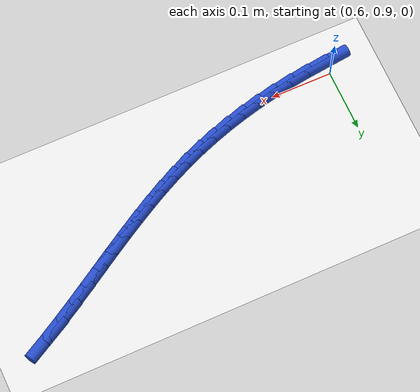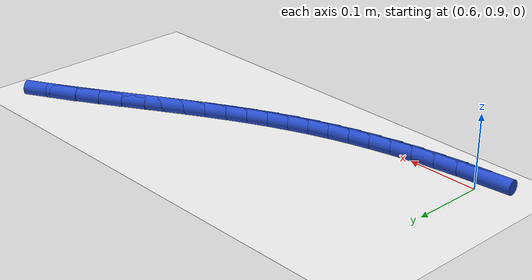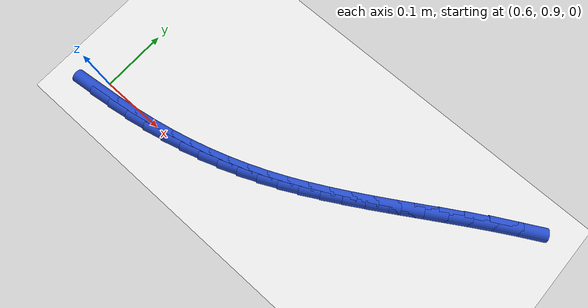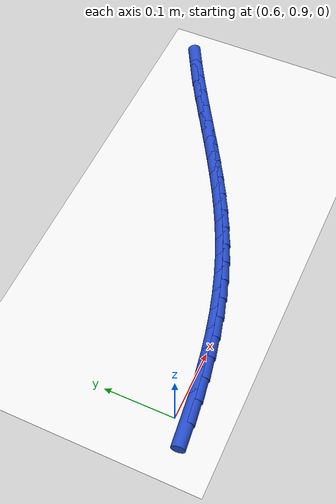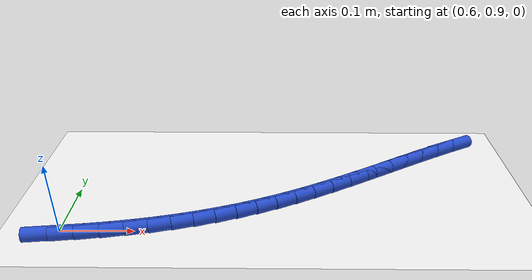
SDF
<sdf version="1.6">
 <world name="default">
  <model name="ground_plane">
   <static>1</static>
   <link name="link">
    <collision name="collision">
     <geometry><plane><normal>0 0 1</normal><size>100 100</size></plane></geometry>
     <surface><friction><ode><mu>100</mu><mu2>50</mu2></ode></friction></surface>
    </collision>
    <visual name="visual">
     <cast_shadows>0</cast_shadows>
     <geometry><plane><normal>0 0 1</normal><size>100 100</size></plane></geometry>
     <material>
      <script><uri>file://media/materials/scripts/gazebo.material</uri><name>Gazebo/WhiteGlow</name></script>
     </material>
    </visual>
   </link>
  </model>
  <model name="line">
   <link name="link_39">
    <pose>0.6002762964712394 0.8826774539770287 0.01 0 1.57 0.11027783871115762</pose>
    <collision name="collision">
     <geometry><cylinder><radius>0.01</radius><length>0.08</length></cylinder></geometry>
    </collision>
    <visual name="visual">
     <material>
      <script><name>Gazebo/Blue</name><uri>file://media/materials/scripts/gazebo.material</uri></script>
     </material>
     <geometry><cylinder><radius>0.01</radius><length>0.08</length></cylinder></geometry>
    </visual>
   </link>
   <link name="link_40">
    <pose>0.633868531338546 0.8863970234191604 0.01 0 1.57 0.13957708503540867</pose>
    <collision name="collision">
     <geometry><cylinder><radius>0.01</radius><length>0.08</length></cylinder></geometry>
    </collision>
    <visual name="visual">
     <material>
      <script><name>Gazebo/Blue</name><uri>file://media/materials/scripts/gazebo.material</uri></script>
     </material>
     <geometry><cylinder><radius>0.01</radius><length>0.08</length></cylinder></geometry>
    </visual>
   </link>
   <link name="link_41">
    <pose>0.6663050688834656 0.890954052269517 0.01 0 1.57 0.1714658999337202</pose>
    <collision name="collision">
     <geometry><cylinder><radius>0.01</radius><length>0.08</length></cylinder></geometry>
    </collision>
    <visual name="visual">
     <material>
      <script><name>Gazebo/Blue</name><uri>file://media/materials/scripts/gazebo.material</uri></script>
     </material>
     <geometry><cylinder><radius>0.01</radius><length>0.08</length></cylinder></geometry>
    </visual>
   </link>
   <link name="link_42">
    <pose>0.6976623314728139 0.8963840733261758 0.01 0 1.57 0.20517414120906383</pose>
    <collision name="collision">
     <geometry><cylinder><radius>0.01</radius><length>0.08</length></cylinder></geometry>
    </collision>
    <visual name="visual">
     <material>
      <script><name>Gazebo/Blue</name><uri>file://media/materials/scripts/gazebo.material</uri></script>
     </material>
     <geometry><cylinder><radius>0.01</radius><length>0.08</length></cylinder></geometry>
    </visual>
   </link>
   <link name="link_43">
    <pose>0.7280412334419588 0.9027059985670012 0.01 0 1.57 0.24042346776079332</pose>
    <collision name="collision">
     <geometry><cylinder><radius>0.01</radius><length>0.08</length></cylinder></geometry>
    </collision>
    <visual name="visual">
     <material>
      <script><name>Gazebo/Blue</name><uri>file://media/materials/scripts/gazebo.material</uri></script>
     </material>
     <geometry><cylinder><radius>0.01</radius><length>0.08</length></cylinder></geometry>
    </visual>
   </link>
   <link name="link_44">
    <pose>0.7575426891262688 0.9099387399698581 0.01 0 1.57 0.27686193448728175</pose>
    <collision name="collision">
     <geometry><cylinder><radius>0.01</radius><length>0.08</length></cylinder></geometry>
    </collision>
    <visual name="visual">
     <material>
      <script><name>Gazebo/Blue</name><uri>file://media/materials/scripts/gazebo.material</uri></script>
     </material>
     <geometry><cylinder><radius>0.01</radius><length>0.08</length></cylinder></geometry>
    </visual>
   </link>
   <link name="link_45">
    <pose>0.7862676128611118 0.9181012095126104 0.01 0 1.57 0.31407340947982215</pose>
    <collision name="collision">
     <geometry><cylinder><radius>0.01</radius><length>0.08</length></cylinder></geometry>
    </collision>
    <visual name="visual">
     <material>
      <script><name>Gazebo/Blue</name><uri>file://media/materials/scripts/gazebo.material</uri></script>
     </material>
     <geometry><cylinder><radius>0.01</radius><length>0.08</length></cylinder></geometry>
    </visual>
   </link>
   <link name="link_46">
    <pose>0.8143169189818565 0.9272123191731231 0.01 0 1.57 0.3515936774598753</pose>
    <collision name="collision">
     <geometry><cylinder><radius>0.01</radius><length>0.08</length></cylinder></geometry>
    </collision>
    <visual name="visual">
     <material>
      <script><name>Gazebo/Blue</name><uri>file://media/materials/scripts/gazebo.material</uri></script>
     </material>
     <geometry><cylinder><radius>0.01</radius><length>0.08</length></cylinder></geometry>
    </visual>
   </link>
   <link name="link_47">
    <pose>0.8417915218238708 0.9372909809292606 0.01 0 1.57 0.3889320985553688</pose>
    <collision name="collision">
     <geometry><cylinder><radius>0.01</radius><length>0.08</length></cylinder></geometry>
    </collision>
    <visual name="visual">
     <material>
      <script><name>Gazebo/Blue</name><uri>file://media/materials/scripts/gazebo.material</uri></script>
     </material>
     <geometry><cylinder><radius>0.01</radius><length>0.08</length></cylinder></geometry>
    </visual>
   </link>
   <link name="link_48">
    <pose>0.8687923357225226 0.9483561067588868 0.01 0 1.57 0.4255078160121785</pose>
    <collision name="collision">
     <geometry><cylinder><radius>0.01</radius><length>0.08</length></cylinder></geometry>
    </collision>
    <visual name="visual">
     <material>
      <script><name>Gazebo/Blue</name><uri>file://media/materials/scripts/gazebo.material</uri></script>
     </material>
     <geometry><cylinder><radius>0.01</radius><length>0.08</length></cylinder></geometry>
    </visual>
   </link>
   <link name="link_49">
    <pose>0.8954217869738804 0.9604244442703687 0.01 0 1.57 0.4590977035321406</pose>
    <collision name="collision">
     <geometry><cylinder><radius>0.01</radius><length>0.08</length></cylinder></geometry>
    </collision>
    <visual name="visual">
     <material>
      <script><name>Gazebo/Blue</name><uri>file://media/materials/scripts/gazebo.material</uri></script>
     </material>
     <geometry><cylinder><radius>0.01</radius><length>0.08</length></cylinder></geometry>
    </visual>
   </link>
   <link name="link_50">
    <pose>0.9218122227821428 0.9734699093364947 0.01 0 1.57 0.4877225725304137</pose>
    <collision name="collision">
     <geometry><cylinder><radius>0.01</radius><length>0.08</length></cylinder></geometry>
    </collision>
    <visual name="visual">
     <material>
      <script><name>Gazebo/Blue</name><uri>file://media/materials/scripts/gazebo.material</uri></script>
     </material>
     <geometry><cylinder><radius>0.01</radius><length>0.08</length></cylinder></geometry>
    </visual>
   </link>
   <link name="link_51">
    <pose>0.9481234397770809 0.9874271240180867 0.01 0 1.57 0.5111271799657586</pose>
    <collision name="collision">
     <geometry><cylinder><radius>0.01</radius><length>0.08</length></cylinder></geometry>
    </collision>
    <visual name="visual">
     <material>
      <script><name>Gazebo/Blue</name><uri>file://media/materials/scripts/gazebo.material</uri></script>
     </material>
     <geometry><cylinder><radius>0.01</radius><length>0.08</length></cylinder></geometry>
    </visual>
   </link>
   <link name="link_52">
    <pose>0.9745162511006799 1.002229255240243 0.01 0 1.57 0.5292782355756943</pose>
    <collision name="collision">
     <geometry><cylinder><radius>0.01</radius><length>0.08</length></cylinder></geometry>
    </collision>
    <visual name="visual">
     <material>
      <script><name>Gazebo/Blue</name><uri>file://media/materials/scripts/gazebo.material</uri></script>
     </material>
     <geometry><cylinder><radius>0.01</radius><length>0.08</length></cylinder></geometry>
    </visual>
   </link>
   <link name="link_53">
    <pose>1.0011514698949242 1.01780946992806 0.01 0 1.57 0.5422775603044807</pose>
    <collision name="collision">
     <geometry><cylinder><radius>0.01</radius><length>0.08</length></cylinder></geometry>
    </collision>
    <visual name="visual">
     <material>
      <script><name>Gazebo/Blue</name><uri>file://media/materials/scripts/gazebo.material</uri></script>
     </material>
     <geometry><cylinder><radius>0.01</radius><length>0.08</length></cylinder></geometry>
    </visual>
   </link>
   <link name="link_54">
    <pose>1.028189909301799 1.0341009350066355 0.01 0 1.57 0.5502976972810698</pose>
    <collision name="collision">
     <geometry><cylinder><radius>0.01</radius><length>0.08</length></cylinder></geometry>
    </collision>
    <visual name="visual">
     <material>
      <script><name>Gazebo/Blue</name><uri>file://media/materials/scripts/gazebo.material</uri></script>
     </material>
     <geometry><cylinder><radius>0.01</radius><length>0.08</length></cylinder></geometry>
    </visual>
   </link>
   <link name="link_55">
    <pose>1.0557876978418765 1.0510325891840988 0.01 0 1.57 0.5527604317135062</pose>
    <collision name="collision">
     <geometry><cylinder><radius>0.01</radius><length>0.08</length></cylinder></geometry>
    </collision>
    <visual name="visual">
     <material>
      <script><name>Gazebo/Blue</name><uri>file://media/materials/scripts/gazebo.material</uri></script>
     </material>
     <geometry><cylinder><radius>0.01</radius><length>0.08</length></cylinder></geometry>
    </visual>
   </link>
   <link name="link_56">
    <pose>1.0839817595152514 1.0684257802809096 0.01 0 1.57 0.5491253197104267</pose>
    <collision name="collision">
     <geometry><cylinder><radius>0.01</radius><length>0.08</length></cylinder></geometry>
    </collision>
    <visual name="visual">
     <material>
      <script><name>Gazebo/Blue</name><uri>file://media/materials/scripts/gazebo.material</uri></script>
     </material>
     <geometry><cylinder><radius>0.01</radius><length>0.08</length></cylinder></geometry>
    </visual>
   </link>
   <link name="link_57">
    <pose>1.1126830776734167 1.0859881853764983 0.01 0 1.57 0.5395536736561675</pose>
    <collision name="collision">
     <geometry><cylinder><radius>0.01</radius><length>0.08</length></cylinder></geometry>
    </collision>
    <visual name="visual">
     <material>
      <script><name>Gazebo/Blue</name><uri>file://media/materials/scripts/gazebo.material</uri></script>
     </material>
     <geometry><cylinder><radius>0.01</radius><length>0.08</length></cylinder></geometry>
    </visual>
   </link>
   <link name="link_58">
    <pose>1.1417966025445394 1.1034220362107106 0.01 0 1.57 0.5239991896611901</pose>
    <collision name="collision">
     <geometry><cylinder><radius>0.01</radius><length>0.08</length></cylinder></geometry>
    </collision>
    <visual name="visual">
     <material>
      <script><name>Gazebo/Blue</name><uri>file://media/materials/scripts/gazebo.material</uri></script>
     </material>
     <geometry><cylinder><radius>0.01</radius><length>0.08</length></cylinder></geometry>
    </visual>
   </link>
   <link name="link_59">
    <pose>1.1712272843567877 1.1204295645233924 0.01 0 1.57 0.5021802407007299</pose>
    <collision name="collision">
     <geometry><cylinder><radius>0.01</radius><length>0.08</length></cylinder></geometry>
    </collision>
    <visual name="visual">
     <material>
      <script><name>Gazebo/Blue</name><uri>file://media/materials/scripts/gazebo.material</uri></script>
     </material>
     <geometry><cylinder><radius>0.01</radius><length>0.08</length></cylinder></geometry>
    </visual>
   </link>
  </model>
 </world>
</sdf>
